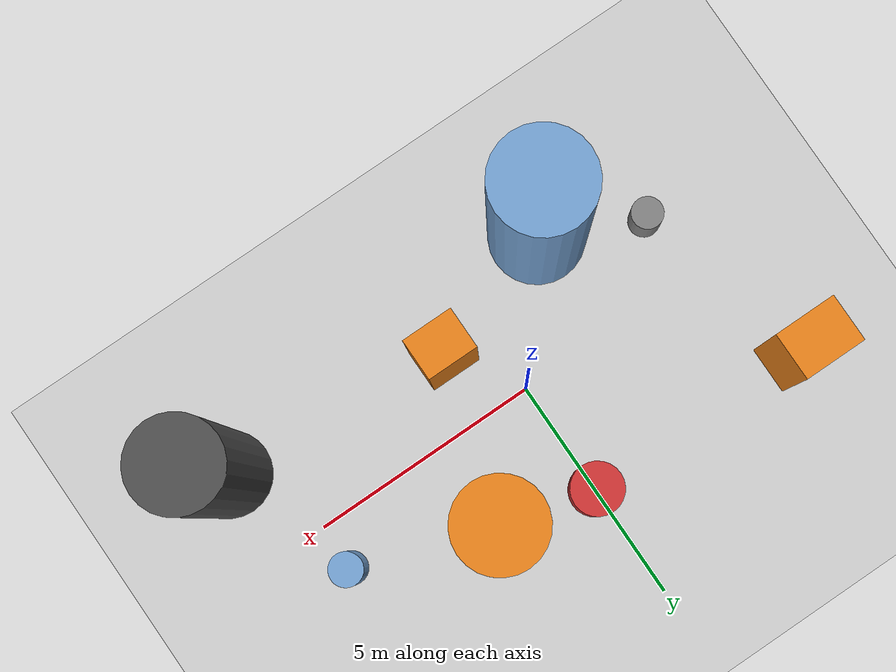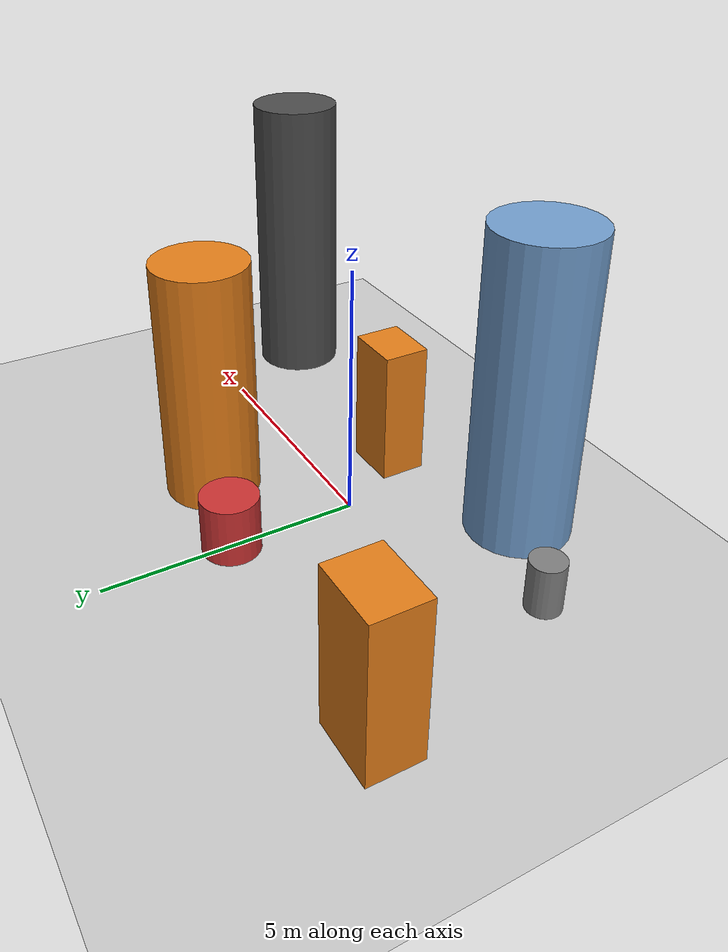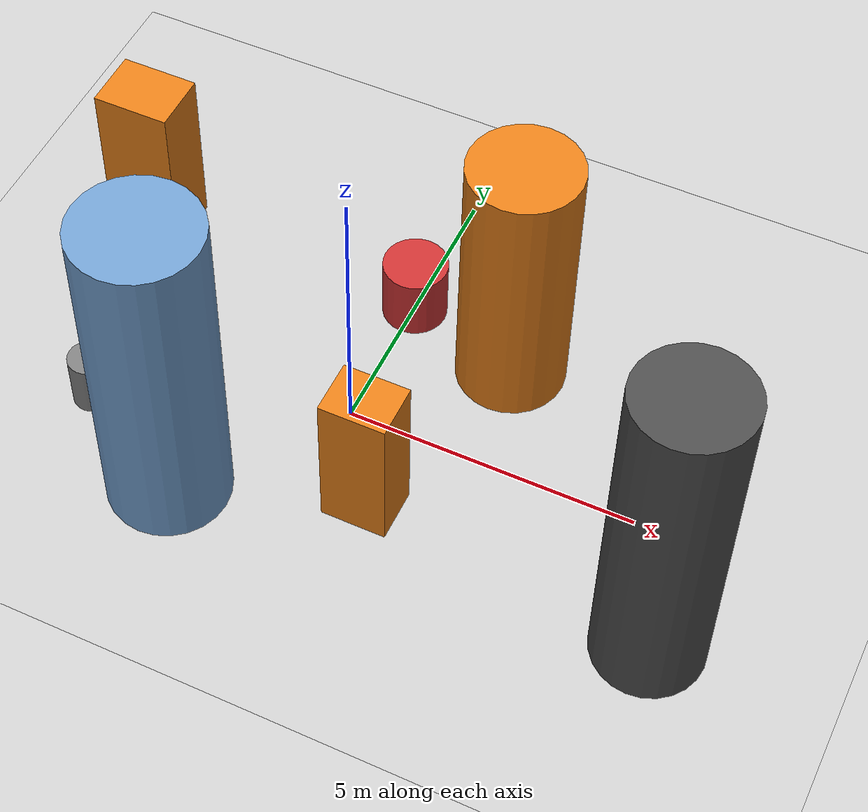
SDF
<?xml version='1.0'?>
<sdf version='1.6'>
  <world name='routeA_rl_v1__support_expansion__rl_train__mixed_3d_low_density_route__000139'>
    <!-- Sun light -->
    <light name='sun' type='directional'>
      <cast_shadows>1</cast_shadows>
      <pose>0 0 10 0 0 0</pose>
      <diffuse>0.8 0.8 0.8 1</diffuse>
      <specular>0.2 0.2 0.2 1</specular>
      <attenuation>
        <range>1000</range>
        <constant>0.9</constant>
        <linear>0.01</linear>
        <quadratic>0.001</quadratic>
      </attenuation>
      <direction>-0.5 0.1 -0.9</direction>
    </light>

    <!-- Ground plane -->
    <model name='ground_plane'>
      <static>1</static>
      <link name='link'>
        <collision name='collision'>
          <geometry>
            <plane>
              <normal>0 0 1</normal>
              <size>100 100</size>
            </plane>
          </geometry>
          <surface>
            <contact>
              <collide_bitmask>65535</collide_bitmask>
              <ode/>
            </contact>
            <friction>
              <ode>
                <mu>100</mu>
                <mu2>50</mu2>
              </ode>
              <torsional><ode/></torsional>
            </friction>
            <bounce/>
          </surface>
          <max_contacts>10</max_contacts>
        </collision>
        <visual name='visual'>
          <cast_shadows>0</cast_shadows>
          <geometry>
            <plane>
              <normal>0 0 1</normal>
              <size>100 100</size>
            </plane>
          </geometry>
          <material>
            <script>
              <uri>file://media/materials/scripts/gazebo.material</uri>
              <n>Gazebo/Grey</n>
            </script>
          </material>
        </visual>
      </link>
    </model>

    <!-- Environment -->
    <magnetic_field>6e-06 2.3e-05 -4.2e-05</magnetic_field>
    <atmosphere type='adiabatic'/>
    <physics name='default_physics' default='0' type='ode'>
      <gravity>0 0 -9.8</gravity>
      <max_step_size>0.004</max_step_size>
      <real_time_factor>1</real_time_factor>
      <real_time_update_rate>250</real_time_update_rate>
    </physics>
    <scene>
      <ambient>0.4 0.4 0.4 1</ambient>
      <background>0.7 0.7 0.7 1</background>
      <shadows>1</shadows>
    </scene>
    <wind/>
    <spherical_coordinates>
      <surface_model>EARTH_WGS84</surface_model>
      <latitude_deg>0</latitude_deg>
      <longitude_deg>0</longitude_deg>
      <elevation>0</elevation>
      <heading_deg>0</heading_deg>
    </spherical_coordinates>

    <!-- ============ OBSTACLES (8) ============ -->
    <model name='low_obs_0'>
      <static>1</static>
      <link name='link'>
        <visual name='visual'>
          <geometry>
            <cylinder>
              <radius>0.3387</radius>
              <length>1.0027</length>
            </cylinder>
          </geometry>
          <material>
            <script>
              <n>Gazebo/Grey</n>
              <uri>file://media/materials/scripts/gazebo.material</uri>
            </script>
            <ambient>0.5 0.5 0.5 1</ambient>
          </material>
        </visual>
        <collision name='collision'>
          <geometry>
            <cylinder>
              <radius>0.3387</radius>
              <length>1.0027</length>
            </cylinder>
          </geometry>
          <max_contacts>10</max_contacts>
          <surface>
            <contact><ode/></contact>
            <bounce/>
            <friction>
              <ode><mu>1</mu><mu2>1</mu2></ode>
              <torsional><ode/></torsional>
            </friction>
          </surface>
        </collision>
      </link>
      <pose>-4.0000 -1.5000 0.5014 0 0 0.0000</pose>
    </model>

    <model name='low_obs_1'>
      <static>1</static>
      <link name='link'>
        <visual name='visual'>
          <geometry>
            <cylinder>
              <radius>0.5571</radius>
              <length>1.1649</length>
            </cylinder>
          </geometry>
          <material>
            <script>
              <n>Gazebo/Red</n>
              <uri>file://media/materials/scripts/gazebo.material</uri>
            </script>
            <ambient>0.8 0.2 0.2 1</ambient>
          </material>
        </visual>
        <collision name='collision'>
          <geometry>
            <cylinder>
              <radius>0.5571</radius>
              <length>1.1649</length>
            </cylinder>
          </geometry>
          <max_contacts>10</max_contacts>
          <surface>
            <contact><ode/></contact>
            <bounce/>
            <friction>
              <ode><mu>1</mu><mu2>1</mu2></ode>
              <torsional><ode/></torsional>
            </friction>
          </surface>
        </collision>
      </link>
      <pose>0.0000 2.5000 0.5824 0 0 0.0000</pose>
    </model>

    <model name='low_obs_2'>
      <static>1</static>
      <link name='link'>
        <visual name='visual'>
          <geometry>
            <cylinder>
              <radius>0.3593</radius>
              <length>1.3660</length>
            </cylinder>
          </geometry>
          <material>
            <script>
              <n>Gazebo/Blue</n>
              <uri>file://media/materials/scripts/gazebo.material</uri>
            </script>
            <ambient>0.447 0.624 0.812 1</ambient>
          </material>
        </visual>
        <collision name='collision'>
          <geometry>
            <cylinder>
              <radius>0.3593</radius>
              <length>1.3660</length>
            </cylinder>
          </geometry>
          <max_contacts>10</max_contacts>
          <surface>
            <contact><ode/></contact>
            <bounce/>
            <friction>
              <ode><mu>1</mu><mu2>1</mu2></ode>
              <torsional><ode/></torsional>
            </friction>
          </surface>
        </collision>
      </link>
      <pose>5.0000 1.0000 0.6830 0 0 0.0000</pose>
    </model>

    <model name='tall_obs_0'>
      <static>1</static>
      <link name='link'>
        <visual name='visual'>
          <geometry>
            <cylinder>
              <radius>1.0248</radius>
              <length>6.0817</length>
            </cylinder>
          </geometry>
          <material>
            <script>
              <n>Gazebo/Blue</n>
              <uri>file://media/materials/scripts/gazebo.material</uri>
            </script>
            <ambient>0.447 0.624 0.812 1</ambient>
          </material>
        </visual>
        <collision name='collision'>
          <geometry>
            <cylinder>
              <radius>1.0248</radius>
              <length>6.0817</length>
            </cylinder>
          </geometry>
          <max_contacts>10</max_contacts>
          <surface>
            <contact><ode/></contact>
            <bounce/>
            <friction>
              <ode><mu>1</mu><mu2>1</mu2></ode>
              <torsional><ode/></torsional>
            </friction>
          </surface>
        </collision>
      </link>
      <pose>-2.0000 -2.5000 3.0408 0 0 0.0000</pose>
    </model>

    <model name='tall_obs_1'>
      <static>1</static>
      <link name='link'>
        <visual name='visual'>
          <geometry>
            <cylinder>
              <radius>0.9339</radius>
              <length>4.8401</length>
            </cylinder>
          </geometry>
          <material>
            <script>
              <n>Gazebo/Orange</n>
              <uri>file://media/materials/scripts/gazebo.material</uri>
            </script>
            <ambient>0.9 0.5 0.1 1</ambient>
          </material>
        </visual>
        <collision name='collision'>
          <geometry>
            <cylinder>
              <radius>0.9339</radius>
              <length>4.8401</length>
            </cylinder>
          </geometry>
          <max_contacts>10</max_contacts>
          <surface>
            <contact><ode/></contact>
            <bounce/>
            <friction>
              <ode><mu>1</mu><mu2>1</mu2></ode>
              <torsional><ode/></torsional>
            </friction>
          </surface>
        </collision>
      </link>
      <pose>2.0000 2.0000 2.4200 0 0 0.0000</pose>
    </model>

    <model name='tall_obs_2'>
      <static>1</static>
      <link name='link'>
        <visual name='visual'>
          <geometry>
            <cylinder>
              <radius>0.9111</radius>
              <length>6.2094</length>
            </cylinder>
          </geometry>
          <material>
            <script>
              <n>Gazebo/DarkGrey</n>
              <uri>file://media/materials/scripts/gazebo.material</uri>
            </script>
            <ambient>0.3 0.3 0.3 1</ambient>
          </material>
        </visual>
        <collision name='collision'>
          <geometry>
            <cylinder>
              <radius>0.9111</radius>
              <length>6.2094</length>
            </cylinder>
          </geometry>
          <max_contacts>10</max_contacts>
          <surface>
            <contact><ode/></contact>
            <bounce/>
            <friction>
              <ode><mu>1</mu><mu2>1</mu2></ode>
              <torsional><ode/></torsional>
            </friction>
          </surface>
        </collision>
      </link>
      <pose>6.0000 -2.0000 3.1047 0 0 0.0000</pose>
    </model>

    <model name='med_obs_0'>
      <static>1</static>
      <link name='link'>
        <visual name='visual'>
          <geometry>
            <box>
              <size>1.3347 1.0341 3.0549</size>
            </box>
          </geometry>
          <material>
            <script>
              <n>Gazebo/Orange</n>
              <uri>file://media/materials/scripts/gazebo.material</uri>
            </script>
            <ambient>0.9 0.5 0.1 1</ambient>
          </material>
        </visual>
        <collision name='collision'>
          <geometry>
            <box>
              <size>1.3347 1.0341 3.0549</size>
            </box>
          </geometry>
          <max_contacts>10</max_contacts>
          <surface>
            <contact><ode/></contact>
            <bounce/>
            <friction>
              <ode><mu>1</mu><mu2>1</mu2></ode>
              <torsional><ode/></torsional>
            </friction>
          </surface>
        </collision>
      </link>
      <pose>-5.0000 2.5000 1.5275 0 0 0.0000</pose>
    </model>

    <model name='med_obs_1'>
      <static>1</static>
      <link name='link'>
        <visual name='visual'>
          <geometry>
            <box>
              <size>1.1157 0.9077 2.7399</size>
            </box>
          </geometry>
          <material>
            <script>
              <n>Gazebo/Orange</n>
              <uri>file://media/materials/scripts/gazebo.material</uri>
            </script>
            <ambient>0.9 0.5 0.1 1</ambient>
          </material>
        </visual>
        <collision name='collision'>
          <geometry>
            <box>
              <size>1.1157 0.9077 2.7399</size>
            </box>
          </geometry>
          <max_contacts>10</max_contacts>
          <surface>
            <contact><ode/></contact>
            <bounce/>
            <friction>
              <ode><mu>1</mu><mu2>1</mu2></ode>
              <torsional><ode/></torsional>
            </friction>
          </surface>
        </collision>
      </link>
      <pose>1.0000 -1.5000 1.3700 0 0 0.0000</pose>
    </model>

    <!-- GUI camera -->
    <gui fullscreen='0'>
      <camera name='user_camera'>
        <pose>-15 0 18 0 0.85 0.15</pose>
        <view_controller>orbit</view_controller>
        <projection_type>perspective</projection_type>
      </camera>
    </gui>
  </world>
</sdf>
